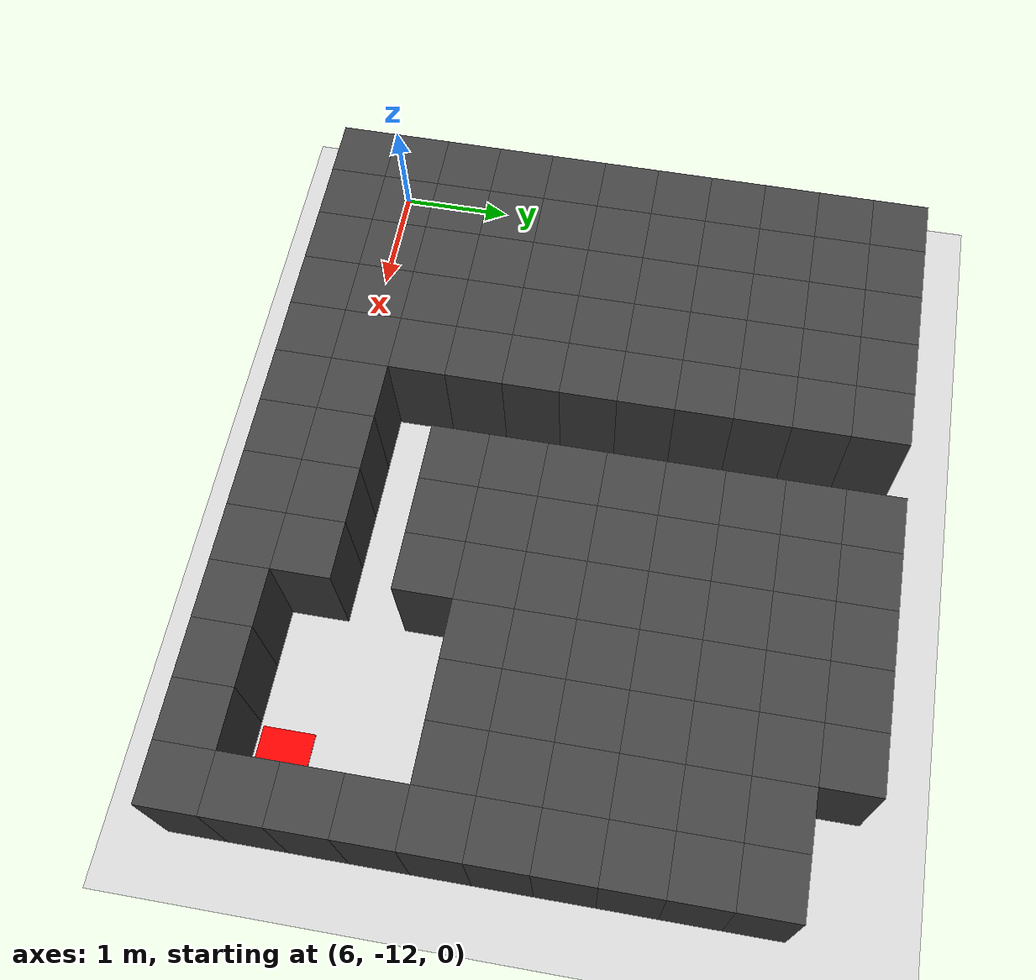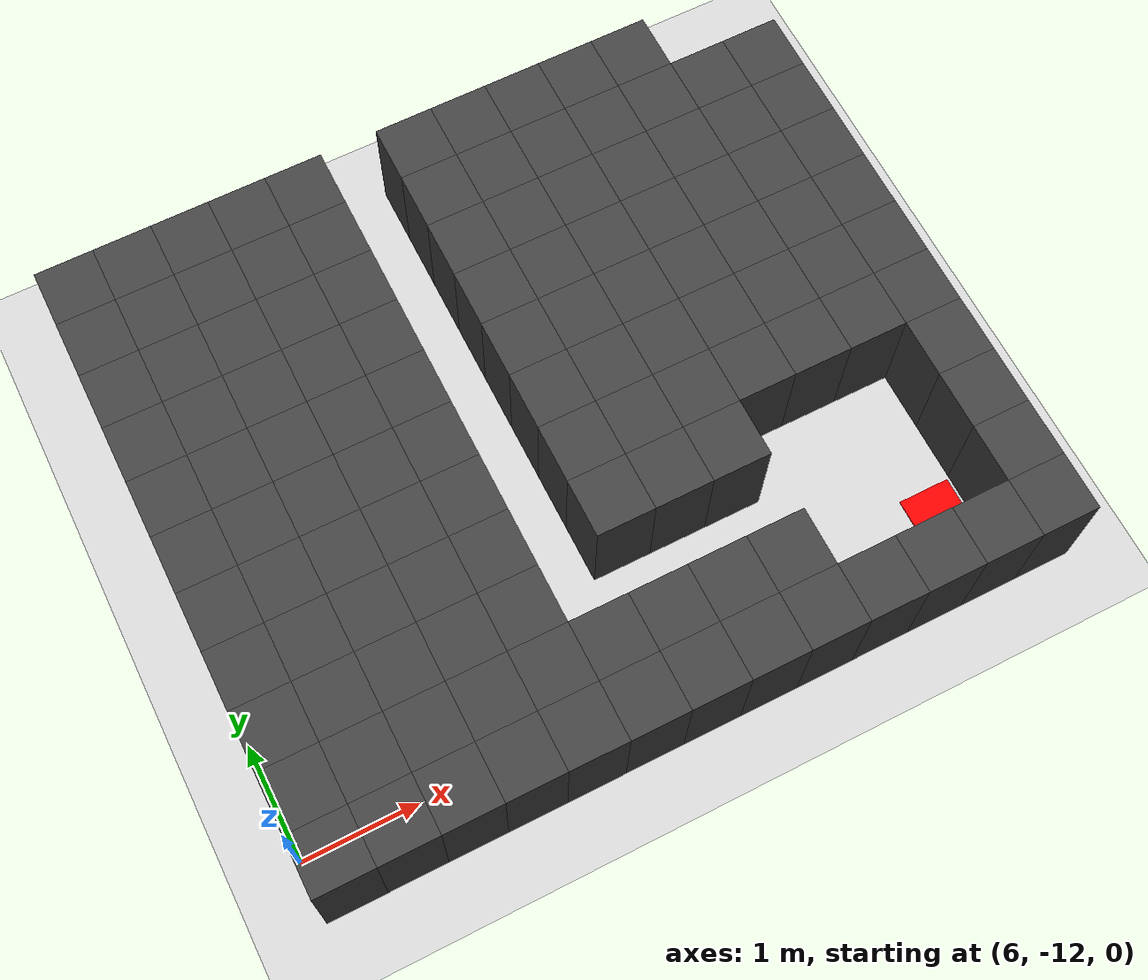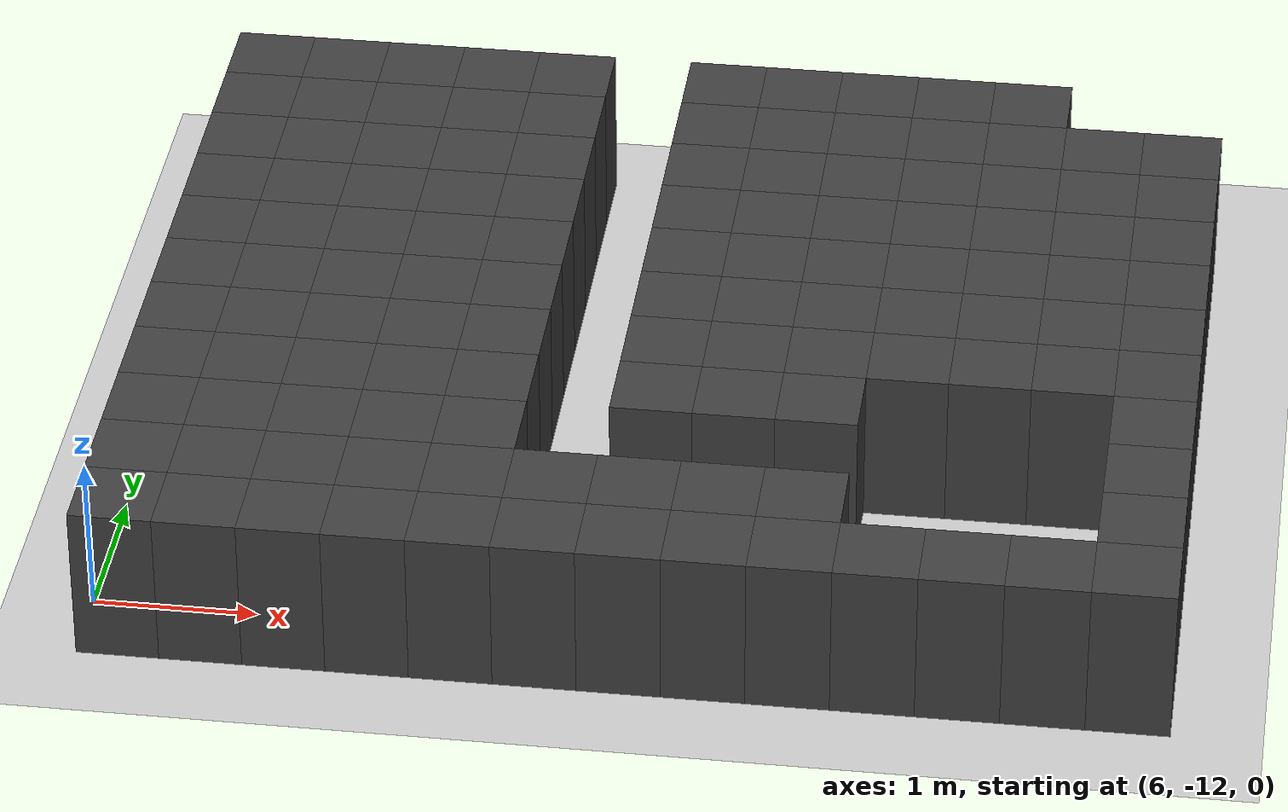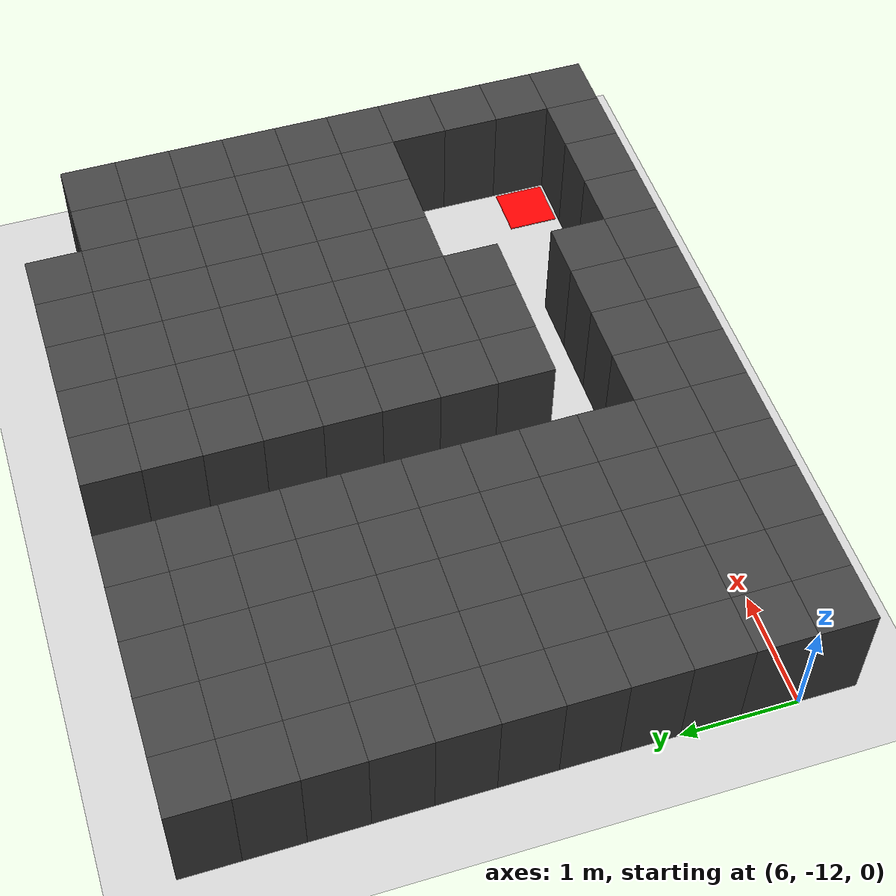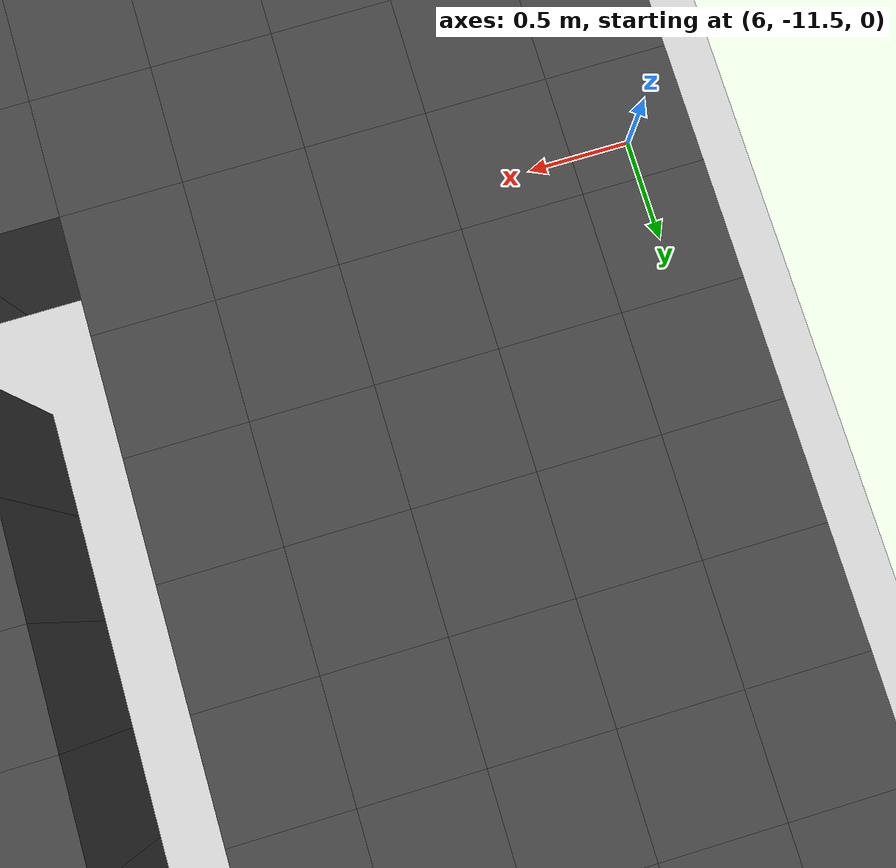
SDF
<sdf version="1.7">
 <world name="map_14547">
  <model name="ground_plane">
   <static>true</static>
   <link name="link">
    <collision name="collision">
     <geometry><plane><normal>0 0 1</normal><size>200 200</size></plane></geometry>
    </collision>
    <visual name="visual">
     <geometry><plane><normal>0 0 1</normal><size>200 200</size></plane></geometry>
     <material><ambient>0.8 0.8 0.8 1</ambient><diffuse>0.8 0.8 0.8 1</diffuse></material>
    </visual>
   </link>
  </model>
  <model name="maze_environment">
   <static>true</static>
   <link name="wall_1393">
    <pose>6.250 -7.250 0.500 0 0 0</pose>
    <collision name="col"><geometry><box><size>0.5 0.5 1.0</size></box></geometry></collision>
    <visual name="vis">
     <geometry><box><size>0.5 0.5 1.0</size></box></geometry>
     <material><ambient>0.15 0.15 0.15 1</ambient><diffuse>0.25 0.25 0.25 1</diffuse></material>
    </visual>
   </link>
   <link name="wall_1394">
    <pose>6.750 -7.250 0.500 0 0 0</pose>
    <collision name="col"><geometry><box><size>0.5 0.5 1.0</size></box></geometry></collision>
    <visual name="vis">
     <geometry><box><size>0.5 0.5 1.0</size></box></geometry>
     <material><ambient>0.15 0.15 0.15 1</ambient><diffuse>0.25 0.25 0.25 1</diffuse></material>
    </visual>
   </link>
   <link name="wall_1395">
    <pose>7.250 -7.250 0.500 0 0 0</pose>
    <collision name="col"><geometry><box><size>0.5 0.5 1.0</size></box></geometry></collision>
    <visual name="vis">
     <geometry><box><size>0.5 0.5 1.0</size></box></geometry>
     <material><ambient>0.15 0.15 0.15 1</ambient><diffuse>0.25 0.25 0.25 1</diffuse></material>
    </visual>
   </link>
   <link name="wall_1396">
    <pose>7.750 -7.250 0.500 0 0 0</pose>
    <collision name="col"><geometry><box><size>0.5 0.5 1.0</size></box></geometry></collision>
    <visual name="vis">
     <geometry><box><size>0.5 0.5 1.0</size></box></geometry>
     <material><ambient>0.15 0.15 0.15 1</ambient><diffuse>0.25 0.25 0.25 1</diffuse></material>
    </visual>
   </link>
   <link name="wall_1397">
    <pose>8.250 -7.250 0.500 0 0 0</pose>
    <collision name="col"><geometry><box><size>0.5 0.5 1.0</size></box></geometry></collision>
    <visual name="vis">
     <geometry><box><size>0.5 0.5 1.0</size></box></geometry>
     <material><ambient>0.15 0.15 0.15 1</ambient><diffuse>0.25 0.25 0.25 1</diffuse></material>
    </visual>
   </link>
   <link name="wall_1398">
    <pose>9.250 -7.250 0.500 0 0 0</pose>
    <collision name="col"><geometry><box><size>0.5 0.5 1.0</size></box></geometry></collision>
    <visual name="vis">
     <geometry><box><size>0.5 0.5 1.0</size></box></geometry>
     <material><ambient>0.15 0.15 0.15 1</ambient><diffuse>0.25 0.25 0.25 1</diffuse></material>
    </visual>
   </link>
   <link name="wall_1399">
    <pose>9.750 -7.250 0.500 0 0 0</pose>
    <collision name="col"><geometry><box><size>0.5 0.5 1.0</size></box></geometry></collision>
    <visual name="vis">
     <geometry><box><size>0.5 0.5 1.0</size></box></geometry>
     <material><ambient>0.15 0.15 0.15 1</ambient><diffuse>0.25 0.25 0.25 1</diffuse></material>
    </visual>
   </link>
   <link name="wall_1400">
    <pose>10.250 -7.250 0.500 0 0 0</pose>
    <collision name="col"><geometry><box><size>0.5 0.5 1.0</size></box></geometry></collision>
    <visual name="vis">
     <geometry><box><size>0.5 0.5 1.0</size></box></geometry>
     <material><ambient>0.15 0.15 0.15 1</ambient><diffuse>0.25 0.25 0.25 1</diffuse></material>
    </visual>
   </link>
   <link name="wall_1401">
    <pose>10.750 -7.250 0.500 0 0 0</pose>
    <collision name="col"><geometry><box><size>0.5 0.5 1.0</size></box></geometry></collision>
    <visual name="vis">
     <geometry><box><size>0.5 0.5 1.0</size></box></geometry>
     <material><ambient>0.15 0.15 0.15 1</ambient><diffuse>0.25 0.25 0.25 1</diffuse></material>
    </visual>
   </link>
   <link name="wall_1402">
    <pose>11.250 -7.250 0.500 0 0 0</pose>
    <collision name="col"><geometry><box><size>0.5 0.5 1.0</size></box></geometry></collision>
    <visual name="vis">
     <geometry><box><size>0.5 0.5 1.0</size></box></geometry>
     <material><ambient>0.15 0.15 0.15 1</ambient><diffuse>0.25 0.25 0.25 1</diffuse></material>
    </visual>
   </link>
   <link name="wall_1424">
    <pose>6.250 -7.750 0.500 0 0 0</pose>
    <collision name="col"><geometry><box><size>0.5 0.5 1.0</size></box></geometry></collision>
    <visual name="vis">
     <geometry><box><size>0.5 0.5 1.0</size></box></geometry>
     <material><ambient>0.15 0.15 0.15 1</ambient><diffuse>0.25 0.25 0.25 1</diffuse></material>
    </visual>
   </link>
   <link name="wall_1425">
    <pose>6.750 -7.750 0.500 0 0 0</pose>
    <collision name="col"><geometry><box><size>0.5 0.5 1.0</size></box></geometry></collision>
    <visual name="vis">
     <geometry><box><size>0.5 0.5 1.0</size></box></geometry>
     <material><ambient>0.15 0.15 0.15 1</ambient><diffuse>0.25 0.25 0.25 1</diffuse></material>
    </visual>
   </link>
   <link name="wall_1426">
    <pose>7.250 -7.750 0.500 0 0 0</pose>
    <collision name="col"><geometry><box><size>0.5 0.5 1.0</size></box></geometry></collision>
    <visual name="vis">
     <geometry><box><size>0.5 0.5 1.0</size></box></geometry>
     <material><ambient>0.15 0.15 0.15 1</ambient><diffuse>0.25 0.25 0.25 1</diffuse></material>
    </visual>
   </link>
   <link name="wall_1427">
    <pose>7.750 -7.750 0.500 0 0 0</pose>
    <collision name="col"><geometry><box><size>0.5 0.5 1.0</size></box></geometry></collision>
    <visual name="vis">
     <geometry><box><size>0.5 0.5 1.0</size></box></geometry>
     <material><ambient>0.15 0.15 0.15 1</ambient><diffuse>0.25 0.25 0.25 1</diffuse></material>
    </visual>
   </link>
   <link name="wall_1428">
    <pose>8.250 -7.750 0.500 0 0 0</pose>
    <collision name="col"><geometry><box><size>0.5 0.5 1.0</size></box></geometry></collision>
    <visual name="vis">
     <geometry><box><size>0.5 0.5 1.0</size></box></geometry>
     <material><ambient>0.15 0.15 0.15 1</ambient><diffuse>0.25 0.25 0.25 1</diffuse></material>
    </visual>
   </link>
   <link name="wall_1429">
    <pose>9.250 -7.750 0.500 0 0 0</pose>
    <collision name="col"><geometry><box><size>0.5 0.5 1.0</size></box></geometry></collision>
    <visual name="vis">
     <geometry><box><size>0.5 0.5 1.0</size></box></geometry>
     <material><ambient>0.15 0.15 0.15 1</ambient><diffuse>0.25 0.25 0.25 1</diffuse></material>
    </visual>
   </link>
   <link name="wall_1430">
    <pose>9.750 -7.750 0.500 0 0 0</pose>
    <collision name="col"><geometry><box><size>0.5 0.5 1.0</size></box></geometry></collision>
    <visual name="vis">
     <geometry><box><size>0.5 0.5 1.0</size></box></geometry>
     <material><ambient>0.15 0.15 0.15 1</ambient><diffuse>0.25 0.25 0.25 1</diffuse></material>
    </visual>
   </link>
   <link name="wall_1431">
    <pose>10.250 -7.750 0.500 0 0 0</pose>
    <collision name="col"><geometry><box><size>0.5 0.5 1.0</size></box></geometry></collision>
    <visual name="vis">
     <geometry><box><size>0.5 0.5 1.0</size></box></geometry>
     <material><ambient>0.15 0.15 0.15 1</ambient><diffuse>0.25 0.25 0.25 1</diffuse></material>
    </visual>
   </link>
   <link name="wall_1432">
    <pose>10.750 -7.750 0.500 0 0 0</pose>
    <collision name="col"><geometry><box><size>0.5 0.5 1.0</size></box></geometry></collision>
    <visual name="vis">
     <geometry><box><size>0.5 0.5 1.0</size></box></geometry>
     <material><ambient>0.15 0.15 0.15 1</ambient><diffuse>0.25 0.25 0.25 1</diffuse></material>
    </visual>
   </link>
   <link name="wall_1433">
    <pose>11.250 -7.750 0.500 0 0 0</pose>
    <collision name="col"><geometry><box><size>0.5 0.5 1.0</size></box></geometry></collision>
    <visual name="vis">
     <geometry><box><size>0.5 0.5 1.0</size></box></geometry>
     <material><ambient>0.15 0.15 0.15 1</ambient><diffuse>0.25 0.25 0.25 1</diffuse></material>
    </visual>
   </link>
   <link name="wall_1434">
    <pose>11.750 -7.750 0.500 0 0 0</pose>
    <collision name="col"><geometry><box><size>0.5 0.5 1.0</size></box></geometry></collision>
    <visual name="vis">
     <geometry><box><size>0.5 0.5 1.0</size></box></geometry>
     <material><ambient>0.15 0.15 0.15 1</ambient><diffuse>0.25 0.25 0.25 1</diffuse></material>
    </visual>
   </link>
   <link name="wall_1435">
    <pose>12.250 -7.750 0.500 0 0 0</pose>
    <collision name="col"><geometry><box><size>0.5 0.5 1.0</size></box></geometry></collision>
    <visual name="vis">
     <geometry><box><size>0.5 0.5 1.0</size></box></geometry>
     <material><ambient>0.15 0.15 0.15 1</ambient><diffuse>0.25 0.25 0.25 1</diffuse></material>
    </visual>
   </link>
   <link name="wall_1460">
    <pose>6.250 -8.250 0.500 0 0 0</pose>
    <collision name="col"><geometry><box><size>0.5 0.5 1.0</size></box></geometry></collision>
    <visual name="vis">
     <geometry><box><size>0.5 0.5 1.0</size></box></geometry>
     <material><ambient>0.15 0.15 0.15 1</ambient><diffuse>0.25 0.25 0.25 1</diffuse></material>
    </visual>
   </link>
   <link name="wall_1461">
    <pose>6.750 -8.250 0.500 0 0 0</pose>
    <collision name="col"><geometry><box><size>0.5 0.5 1.0</size></box></geometry></collision>
    <visual name="vis">
     <geometry><box><size>0.5 0.5 1.0</size></box></geometry>
     <material><ambient>0.15 0.15 0.15 1</ambient><diffuse>0.25 0.25 0.25 1</diffuse></material>
    </visual>
   </link>
   <link name="wall_1462">
    <pose>7.250 -8.250 0.500 0 0 0</pose>
    <collision name="col"><geometry><box><size>0.5 0.5 1.0</size></box></geometry></collision>
    <visual name="vis">
     <geometry><box><size>0.5 0.5 1.0</size></box></geometry>
     <material><ambient>0.15 0.15 0.15 1</ambient><diffuse>0.25 0.25 0.25 1</diffuse></material>
    </visual>
   </link>
   <link name="wall_1463">
    <pose>7.750 -8.250 0.500 0 0 0</pose>
    <collision name="col"><geometry><box><size>0.5 0.5 1.0</size></box></geometry></collision>
    <visual name="vis">
     <geometry><box><size>0.5 0.5 1.0</size></box></geometry>
     <material><ambient>0.15 0.15 0.15 1</ambient><diffuse>0.25 0.25 0.25 1</diffuse></material>
    </visual>
   </link>
   <link name="wall_1464">
    <pose>8.250 -8.250 0.500 0 0 0</pose>
    <collision name="col"><geometry><box><size>0.5 0.5 1.0</size></box></geometry></collision>
    <visual name="vis">
     <geometry><box><size>0.5 0.5 1.0</size></box></geometry>
     <material><ambient>0.15 0.15 0.15 1</ambient><diffuse>0.25 0.25 0.25 1</diffuse></material>
    </visual>
   </link>
   <link name="wall_1465">
    <pose>9.250 -8.250 0.500 0 0 0</pose>
    <collision name="col"><geometry><box><size>0.5 0.5 1.0</size></box></geometry></collision>
    <visual name="vis">
     <geometry><box><size>0.5 0.5 1.0</size></box></geometry>
     <material><ambient>0.15 0.15 0.15 1</ambient><diffuse>0.25 0.25 0.25 1</diffuse></material>
    </visual>
   </link>
   <link name="wall_1466">
    <pose>9.750 -8.250 0.500 0 0 0</pose>
    <collision name="col"><geometry><box><size>0.5 0.5 1.0</size></box></geometry></collision>
    <visual name="vis">
     <geometry><box><size>0.5 0.5 1.0</size></box></geometry>
     <material><ambient>0.15 0.15 0.15 1</ambient><diffuse>0.25 0.25 0.25 1</diffuse></material>
    </visual>
   </link>
   <link name="wall_1467">
    <pose>10.250 -8.250 0.500 0 0 0</pose>
    <collision name="col"><geometry><box><size>0.5 0.5 1.0</size></box></geometry></collision>
    <visual name="vis">
     <geometry><box><size>0.5 0.5 1.0</size></box></geometry>
     <material><ambient>0.15 0.15 0.15 1</ambient><diffuse>0.25 0.25 0.25 1</diffuse></material>
    </visual>
   </link>
   <link name="wall_1468">
    <pose>10.750 -8.250 0.500 0 0 0</pose>
    <collision name="col"><geometry><box><size>0.5 0.5 1.0</size></box></geometry></collision>
    <visual name="vis">
     <geometry><box><size>0.5 0.5 1.0</size></box></geometry>
     <material><ambient>0.15 0.15 0.15 1</ambient><diffuse>0.25 0.25 0.25 1</diffuse></material>
    </visual>
   </link>
   <link name="wall_1469">
    <pose>11.250 -8.250 0.500 0 0 0</pose>
    <collision name="col"><geometry><box><size>0.5 0.5 1.0</size></box></geometry></collision>
    <visual name="vis">
     <geometry><box><size>0.5 0.5 1.0</size></box></geometry>
     <material><ambient>0.15 0.15 0.15 1</ambient><diffuse>0.25 0.25 0.25 1</diffuse></material>
    </visual>
   </link>
   <link name="wall_1470">
    <pose>11.750 -8.250 0.500 0 0 0</pose>
    <collision name="col"><geometry><box><size>0.5 0.5 1.0</size></box></geometry></collision>
    <visual name="vis">
     <geometry><box><size>0.5 0.5 1.0</size></box></geometry>
     <material><ambient>0.15 0.15 0.15 1</ambient><diffuse>0.25 0.25 0.25 1</diffuse></material>
    </visual>
   </link>
   <link name="wall_1471">
    <pose>12.250 -8.250 0.500 0 0 0</pose>
    <collision name="col"><geometry><box><size>0.5 0.5 1.0</size></box></geometry></collision>
    <visual name="vis">
     <geometry><box><size>0.5 0.5 1.0</size></box></geometry>
     <material><ambient>0.15 0.15 0.15 1</ambient><diffuse>0.25 0.25 0.25 1</diffuse></material>
    </visual>
   </link>
   <link name="wall_1497">
    <pose>6.250 -8.750 0.500 0 0 0</pose>
    <collision name="col"><geometry><box><size>0.5 0.5 1.0</size></box></geometry></collision>
    <visual name="vis">
     <geometry><box><size>0.5 0.5 1.0</size></box></geometry>
     <material><ambient>0.15 0.15 0.15 1</ambient><diffuse>0.25 0.25 0.25 1</diffuse></material>
    </visual>
   </link>
   <link name="wall_1498">
    <pose>6.750 -8.750 0.500 0 0 0</pose>
    <collision name="col"><geometry><box><size>0.5 0.5 1.0</size></box></geometry></collision>
    <visual name="vis">
     <geometry><box><size>0.5 0.5 1.0</size></box></geometry>
     <material><ambient>0.15 0.15 0.15 1</ambient><diffuse>0.25 0.25 0.25 1</diffuse></material>
    </visual>
   </link>
   <link name="wall_1499">
    <pose>7.250 -8.750 0.500 0 0 0</pose>
    <collision name="col"><geometry><box><size>0.5 0.5 1.0</size></box></geometry></collision>
    <visual name="vis">
     <geometry><box><size>0.5 0.5 1.0</size></box></geometry>
     <material><ambient>0.15 0.15 0.15 1</ambient><diffuse>0.25 0.25 0.25 1</diffuse></material>
    </visual>
   </link>
   <link name="wall_1500">
    <pose>7.750 -8.750 0.500 0 0 0</pose>
    <collision name="col"><geometry><box><size>0.5 0.5 1.0</size></box></geometry></collision>
    <visual name="vis">
     <geometry><box><size>0.5 0.5 1.0</size></box></geometry>
     <material><ambient>0.15 0.15 0.15 1</ambient><diffuse>0.25 0.25 0.25 1</diffuse></material>
    </visual>
   </link>
   <link name="wall_1501">
    <pose>8.250 -8.750 0.500 0 0 0</pose>
    <collision name="col"><geometry><box><size>0.5 0.5 1.0</size></box></geometry></collision>
    <visual name="vis">
     <geometry><box><size>0.5 0.5 1.0</size></box></geometry>
     <material><ambient>0.15 0.15 0.15 1</ambient><diffuse>0.25 0.25 0.25 1</diffuse></material>
    </visual>
   </link>
   <link name="wall_1502">
    <pose>9.250 -8.750 0.500 0 0 0</pose>
    <collision name="col"><geometry><box><size>0.5 0.5 1.0</size></box></geometry></collision>
    <visual name="vis">
     <geometry><box><size>0.5 0.5 1.0</size></box></geometry>
     <material><ambient>0.15 0.15 0.15 1</ambient><diffuse>0.25 0.25 0.25 1</diffuse></material>
    </visual>
   </link>
   <link name="wall_1503">
    <pose>9.750 -8.750 0.500 0 0 0</pose>
    <collision name="col"><geometry><box><size>0.5 0.5 1.0</size></box></geometry></collision>
    <visual name="vis">
     <geometry><box><size>0.5 0.5 1.0</size></box></geometry>
     <material><ambient>0.15 0.15 0.15 1</ambient><diffuse>0.25 0.25 0.25 1</diffuse></material>
    </visual>
   </link>
   <link name="wall_1504">
    <pose>10.250 -8.750 0.500 0 0 0</pose>
    <collision name="col"><geometry><box><size>0.5 0.5 1.0</size></box></geometry></collision>
    <visual name="vis">
     <geometry><box><size>0.5 0.5 1.0</size></box></geometry>
     <material><ambient>0.15 0.15 0.15 1</ambient><diffuse>0.25 0.25 0.25 1</diffuse></material>
    </visual>
   </link>
   <link name="wall_1505">
    <pose>10.750 -8.750 0.500 0 0 0</pose>
    <collision name="col"><geometry><box><size>0.5 0.5 1.0</size></box></geometry></collision>
    <visual name="vis">
     <geometry><box><size>0.5 0.5 1.0</size></box></geometry>
     <material><ambient>0.15 0.15 0.15 1</ambient><diffuse>0.25 0.25 0.25 1</diffuse></material>
    </visual>
   </link>
   <link name="wall_1506">
    <pose>11.250 -8.750 0.500 0 0 0</pose>
    <collision name="col"><geometry><box><size>0.5 0.5 1.0</size></box></geometry></collision>
    <visual name="vis">
     <geometry><box><size>0.5 0.5 1.0</size></box></geometry>
     <material><ambient>0.15 0.15 0.15 1</ambient><diffuse>0.25 0.25 0.25 1</diffuse></material>
    </visual>
   </link>
   <link name="wall_1507">
    <pose>11.750 -8.750 0.500 0 0 0</pose>
    <collision name="col"><geometry><box><size>0.5 0.5 1.0</size></box></geometry></collision>
    <visual name="vis">
     <geometry><box><size>0.5 0.5 1.0</size></box></geometry>
     <material><ambient>0.15 0.15 0.15 1</ambient><diffuse>0.25 0.25 0.25 1</diffuse></material>
    </visual>
   </link>
   <link name="wall_1508">
    <pose>12.250 -8.750 0.500 0 0 0</pose>
    <collision name="col"><geometry><box><size>0.5 0.5 1.0</size></box></geometry></collision>
    <visual name="vis">
     <geometry><box><size>0.5 0.5 1.0</size></box></geometry>
     <material><ambient>0.15 0.15 0.15 1</ambient><diffuse>0.25 0.25 0.25 1</diffuse></material>
    </visual>
   </link>
   <link name="wall_1540">
    <pose>6.250 -9.250 0.500 0 0 0</pose>
    <collision name="col"><geometry><box><size>0.5 0.5 1.0</size></box></geometry></collision>
    <visual name="vis">
     <geometry><box><size>0.5 0.5 1.0</size></box></geometry>
     <material><ambient>0.15 0.15 0.15 1</ambient><diffuse>0.25 0.25 0.25 1</diffuse></material>
    </visual>
   </link>
   <link name="wall_1541">
    <pose>6.750 -9.250 0.500 0 0 0</pose>
    <collision name="col"><geometry><box><size>0.5 0.5 1.0</size></box></geometry></collision>
    <visual name="vis">
     <geometry><box><size>0.5 0.5 1.0</size></box></geometry>
     <material><ambient>0.15 0.15 0.15 1</ambient><diffuse>0.25 0.25 0.25 1</diffuse></material>
    </visual>
   </link>
   <link name="wall_1542">
    <pose>7.250 -9.250 0.500 0 0 0</pose>
    <collision name="col"><geometry><box><size>0.5 0.5 1.0</size></box></geometry></collision>
    <visual name="vis">
     <geometry><box><size>0.5 0.5 1.0</size></box></geometry>
     <material><ambient>0.15 0.15 0.15 1</ambient><diffuse>0.25 0.25 0.25 1</diffuse></material>
    </visual>
   </link>
   <link name="wall_1543">
    <pose>7.750 -9.250 0.500 0 0 0</pose>
    <collision name="col"><geometry><box><size>0.5 0.5 1.0</size></box></geometry></collision>
    <visual name="vis">
     <geometry><box><size>0.5 0.5 1.0</size></box></geometry>
     <material><ambient>0.15 0.15 0.15 1</ambient><diffuse>0.25 0.25 0.25 1</diffuse></material>
    </visual>
   </link>
   <link name="wall_1544">
    <pose>8.250 -9.250 0.500 0 0 0</pose>
    <collision name="col"><geometry><box><size>0.5 0.5 1.0</size></box></geometry></collision>
    <visual name="vis">
     <geometry><box><size>0.5 0.5 1.0</size></box></geometry>
     <material><ambient>0.15 0.15 0.15 1</ambient><diffuse>0.25 0.25 0.25 1</diffuse></material>
    </visual>
   </link>
   <link name="wall_1545">
    <pose>9.250 -9.250 0.500 0 0 0</pose>
    <collision name="col"><geometry><box><size>0.5 0.5 1.0</size></box></geometry></collision>
    <visual name="vis">
     <geometry><box><size>0.5 0.5 1.0</size></box></geometry>
     <material><ambient>0.15 0.15 0.15 1</ambient><diffuse>0.25 0.25 0.25 1</diffuse></material>
    </visual>
   </link>
   <link name="wall_1546">
    <pose>9.750 -9.250 0.500 0 0 0</pose>
    <collision name="col"><geometry><box><size>0.5 0.5 1.0</size></box></geometry></collision>
    <visual name="vis">
     <geometry><box><size>0.5 0.5 1.0</size></box></geometry>
     <material><ambient>0.15 0.15 0.15 1</ambient><diffuse>0.25 0.25 0.25 1</diffuse></material>
    </visual>
   </link>
   <link name="wall_1547">
    <pose>10.250 -9.250 0.500 0 0 0</pose>
    <collision name="col"><geometry><box><size>0.5 0.5 1.0</size></box></geometry></collision>
    <visual name="vis">
     <geometry><box><size>0.5 0.5 1.0</size></box></geometry>
     <material><ambient>0.15 0.15 0.15 1</ambient><diffuse>0.25 0.25 0.25 1</diffuse></material>
    </visual>
   </link>
   <link name="wall_1548">
    <pose>10.750 -9.250 0.500 0 0 0</pose>
    <collision name="col"><geometry><box><size>0.5 0.5 1.0</size></box></geometry></collision>
    <visual name="vis">
     <geometry><box><size>0.5 0.5 1.0</size></box></geometry>
     <material><ambient>0.15 0.15 0.15 1</ambient><diffuse>0.25 0.25 0.25 1</diffuse></material>
    </visual>
   </link>
   <link name="wall_1549">
    <pose>11.250 -9.250 0.500 0 0 0</pose>
    <collision name="col"><geometry><box><size>0.5 0.5 1.0</size></box></geometry></collision>
    <visual name="vis">
     <geometry><box><size>0.5 0.5 1.0</size></box></geometry>
     <material><ambient>0.15 0.15 0.15 1</ambient><diffuse>0.25 0.25 0.25 1</diffuse></material>
    </visual>
   </link>
   <link name="wall_1550">
    <pose>11.750 -9.250 0.500 0 0 0</pose>
    <collision name="col"><geometry><box><size>0.5 0.5 1.0</size></box></geometry></collision>
    <visual name="vis">
     <geometry><box><size>0.5 0.5 1.0</size></box></geometry>
     <material><ambient>0.15 0.15 0.15 1</ambient><diffuse>0.25 0.25 0.25 1</diffuse></material>
    </visual>
   </link>
   <link name="wall_1551">
    <pose>12.250 -9.250 0.500 0 0 0</pose>
    <collision name="col"><geometry><box><size>0.5 0.5 1.0</size></box></geometry></collision>
    <visual name="vis">
     <geometry><box><size>0.5 0.5 1.0</size></box></geometry>
     <material><ambient>0.15 0.15 0.15 1</ambient><diffuse>0.25 0.25 0.25 1</diffuse></material>
    </visual>
   </link>
   <link name="wall_1583">
    <pose>6.250 -9.750 0.500 0 0 0</pose>
    <collision name="col"><geometry><box><size>0.5 0.5 1.0</size></box></geometry></collision>
    <visual name="vis">
     <geometry><box><size>0.5 0.5 1.0</size></box></geometry>
     <material><ambient>0.15 0.15 0.15 1</ambient><diffuse>0.25 0.25 0.25 1</diffuse></material>
    </visual>
   </link>
   <link name="wall_1584">
    <pose>6.750 -9.750 0.500 0 0 0</pose>
    <collision name="col"><geometry><box><size>0.5 0.5 1.0</size></box></geometry></collision>
    <visual name="vis">
     <geometry><box><size>0.5 0.5 1.0</size></box></geometry>
     <material><ambient>0.15 0.15 0.15 1</ambient><diffuse>0.25 0.25 0.25 1</diffuse></material>
    </visual>
   </link>
   <link name="wall_1585">
    <pose>7.250 -9.750 0.500 0 0 0</pose>
    <collision name="col"><geometry><box><size>0.5 0.5 1.0</size></box></geometry></collision>
    <visual name="vis">
     <geometry><box><size>0.5 0.5 1.0</size></box></geometry>
     <material><ambient>0.15 0.15 0.15 1</ambient><diffuse>0.25 0.25 0.25 1</diffuse></material>
    </visual>
   </link>
   <link name="wall_1586">
    <pose>7.750 -9.750 0.500 0 0 0</pose>
    <collision name="col"><geometry><box><size>0.5 0.5 1.0</size></box></geometry></collision>
    <visual name="vis">
     <geometry><box><size>0.5 0.5 1.0</size></box></geometry>
     <material><ambient>0.15 0.15 0.15 1</ambient><diffuse>0.25 0.25 0.25 1</diffuse></material>
    </visual>
   </link>
   <link name="wall_1587">
    <pose>8.250 -9.750 0.500 0 0 0</pose>
    <collision name="col"><geometry><box><size>0.5 0.5 1.0</size></box></geometry></collision>
    <visual name="vis">
     <geometry><box><size>0.5 0.5 1.0</size></box></geometry>
     <material><ambient>0.15 0.15 0.15 1</ambient><diffuse>0.25 0.25 0.25 1</diffuse></material>
    </visual>
   </link>
   <link name="wall_1588">
    <pose>9.250 -9.750 0.500 0 0 0</pose>
    <collision name="col"><geometry><box><size>0.5 0.5 1.0</size></box></geometry></collision>
    <visual name="vis">
     <geometry><box><size>0.5 0.5 1.0</size></box></geometry>
     <material><ambient>0.15 0.15 0.15 1</ambient><diffuse>0.25 0.25 0.25 1</diffuse></material>
    </visual>
   </link>
   <link name="wall_1589">
    <pose>9.750 -9.750 0.500 0 0 0</pose>
    <collision name="col"><geometry><box><size>0.5 0.5 1.0</size></box></geometry></collision>
    <visual name="vis">
     <geometry><box><size>0.5 0.5 1.0</size></box></geometry>
     <material><ambient>0.15 0.15 0.15 1</ambient><diffuse>0.25 0.25 0.25 1</diffuse></material>
    </visual>
   </link>
   <link name="wall_1590">
    <pose>10.250 -9.750 0.500 0 0 0</pose>
    <collision name="col"><geometry><box><size>0.5 0.5 1.0</size></box></geometry></collision>
    <visual name="vis">
     <geometry><box><size>0.5 0.5 1.0</size></box></geometry>
     <material><ambient>0.15 0.15 0.15 1</ambient><diffuse>0.25 0.25 0.25 1</diffuse></material>
    </visual>
   </link>
   <link name="wall_1591">
    <pose>10.750 -9.750 0.500 0 0 0</pose>
    <collision name="col"><geometry><box><size>0.5 0.5 1.0</size></box></geometry></collision>
    <visual name="vis">
     <geometry><box><size>0.5 0.5 1.0</size></box></geometry>
     <material><ambient>0.15 0.15 0.15 1</ambient><diffuse>0.25 0.25 0.25 1</diffuse></material>
    </visual>
   </link>
   <link name="wall_1592">
    <pose>11.250 -9.750 0.500 0 0 0</pose>
    <collision name="col"><geometry><box><size>0.5 0.5 1.0</size></box></geometry></collision>
    <visual name="vis">
     <geometry><box><size>0.5 0.5 1.0</size></box></geometry>
     <material><ambient>0.15 0.15 0.15 1</ambient><diffuse>0.25 0.25 0.25 1</diffuse></material>
    </visual>
   </link>
   <link name="wall_1593">
    <pose>11.750 -9.750 0.500 0 0 0</pose>
    <collision name="col"><geometry><box><size>0.5 0.5 1.0</size></box></geometry></collision>
    <visual name="vis">
     <geometry><box><size>0.5 0.5 1.0</size></box></geometry>
     <material><ambient>0.15 0.15 0.15 1</ambient><diffuse>0.25 0.25 0.25 1</diffuse></material>
    </visual>
   </link>
   <link name="wall_1594">
    <pose>12.250 -9.750 0.500 0 0 0</pose>
    <collision name="col"><geometry><box><size>0.5 0.5 1.0</size></box></geometry></collision>
    <visual name="vis">
     <geometry><box><size>0.5 0.5 1.0</size></box></geometry>
     <material><ambient>0.15 0.15 0.15 1</ambient><diffuse>0.25 0.25 0.25 1</diffuse></material>
    </visual>
   </link>
   <link name="wall_1626">
    <pose>6.250 -10.250 0.500 0 0 0</pose>
    <collision name="col"><geometry><box><size>0.5 0.5 1.0</size></box></geometry></collision>
    <visual name="vis">
     <geometry><box><size>0.5 0.5 1.0</size></box></geometry>
     <material><ambient>0.15 0.15 0.15 1</ambient><diffuse>0.25 0.25 0.25 1</diffuse></material>
    </visual>
   </link>
   <link name="wall_1627">
    <pose>6.750 -10.250 0.500 0 0 0</pose>
    <collision name="col"><geometry><box><size>0.5 0.5 1.0</size></box></geometry></collision>
    <visual name="vis">
     <geometry><box><size>0.5 0.5 1.0</size></box></geometry>
     <material><ambient>0.15 0.15 0.15 1</ambient><diffuse>0.25 0.25 0.25 1</diffuse></material>
    </visual>
   </link>
   <link name="wall_1628">
    <pose>7.250 -10.250 0.500 0 0 0</pose>
    <collision name="col"><geometry><box><size>0.5 0.5 1.0</size></box></geometry></collision>
    <visual name="vis">
     <geometry><box><size>0.5 0.5 1.0</size></box></geometry>
     <material><ambient>0.15 0.15 0.15 1</ambient><diffuse>0.25 0.25 0.25 1</diffuse></material>
    </visual>
   </link>
   <link name="wall_1629">
    <pose>7.750 -10.250 0.500 0 0 0</pose>
    <collision name="col"><geometry><box><size>0.5 0.5 1.0</size></box></geometry></collision>
    <visual name="vis">
     <geometry><box><size>0.5 0.5 1.0</size></box></geometry>
     <material><ambient>0.15 0.15 0.15 1</ambient><diffuse>0.25 0.25 0.25 1</diffuse></material>
    </visual>
   </link>
   <link name="wall_1630">
    <pose>8.250 -10.250 0.500 0 0 0</pose>
    <collision name="col"><geometry><box><size>0.5 0.5 1.0</size></box></geometry></collision>
    <visual name="vis">
     <geometry><box><size>0.5 0.5 1.0</size></box></geometry>
     <material><ambient>0.15 0.15 0.15 1</ambient><diffuse>0.25 0.25 0.25 1</diffuse></material>
    </visual>
   </link>
   <link name="wall_1631">
    <pose>9.250 -10.250 0.500 0 0 0</pose>
    <collision name="col"><geometry><box><size>0.5 0.5 1.0</size></box></geometry></collision>
    <visual name="vis">
     <geometry><box><size>0.5 0.5 1.0</size></box></geometry>
     <material><ambient>0.15 0.15 0.15 1</ambient><diffuse>0.25 0.25 0.25 1</diffuse></material>
    </visual>
   </link>
   <link name="wall_1632">
    <pose>9.750 -10.250 0.500 0 0 0</pose>
    <collision name="col"><geometry><box><size>0.5 0.5 1.0</size></box></geometry></collision>
    <visual name="vis">
     <geometry><box><size>0.5 0.5 1.0</size></box></geometry>
     <material><ambient>0.15 0.15 0.15 1</ambient><diffuse>0.25 0.25 0.25 1</diffuse></material>
    </visual>
   </link>
   <link name="wall_1633">
    <pose>10.250 -10.250 0.500 0 0 0</pose>
    <collision name="col"><geometry><box><size>0.5 0.5 1.0</size></box></geometry></collision>
    <visual name="vis">
     <geometry><box><size>0.5 0.5 1.0</size></box></geometry>
     <material><ambient>0.15 0.15 0.15 1</ambient><diffuse>0.25 0.25 0.25 1</diffuse></material>
    </visual>
   </link>
   <link name="wall_1634">
    <pose>10.750 -10.250 0.500 0 0 0</pose>
    <collision name="col"><geometry><box><size>0.5 0.5 1.0</size></box></geometry></collision>
    <visual name="vis">
     <geometry><box><size>0.5 0.5 1.0</size></box></geometry>
     <material><ambient>0.15 0.15 0.15 1</ambient><diffuse>0.25 0.25 0.25 1</diffuse></material>
    </visual>
   </link>
   <link name="wall_1635">
    <pose>11.250 -10.250 0.500 0 0 0</pose>
    <collision name="col"><geometry><box><size>0.5 0.5 1.0</size></box></geometry></collision>
    <visual name="vis">
     <geometry><box><size>0.5 0.5 1.0</size></box></geometry>
     <material><ambient>0.15 0.15 0.15 1</ambient><diffuse>0.25 0.25 0.25 1</diffuse></material>
    </visual>
   </link>
   <link name="wall_1636">
    <pose>11.750 -10.250 0.500 0 0 0</pose>
    <collision name="col"><geometry><box><size>0.5 0.5 1.0</size></box></geometry></collision>
    <visual name="vis">
     <geometry><box><size>0.5 0.5 1.0</size></box></geometry>
     <material><ambient>0.15 0.15 0.15 1</ambient><diffuse>0.25 0.25 0.25 1</diffuse></material>
    </visual>
   </link>
   <link name="wall_1637">
    <pose>12.250 -10.250 0.500 0 0 0</pose>
    <collision name="col"><geometry><box><size>0.5 0.5 1.0</size></box></geometry></collision>
    <visual name="vis">
     <geometry><box><size>0.5 0.5 1.0</size></box></geometry>
     <material><ambient>0.15 0.15 0.15 1</ambient><diffuse>0.25 0.25 0.25 1</diffuse></material>
    </visual>
   </link>
   <link name="wall_1675">
    <pose>6.250 -10.750 0.500 0 0 0</pose>
    <collision name="col"><geometry><box><size>0.5 0.5 1.0</size></box></geometry></collision>
    <visual name="vis">
     <geometry><box><size>0.5 0.5 1.0</size></box></geometry>
     <material><ambient>0.15 0.15 0.15 1</ambient><diffuse>0.25 0.25 0.25 1</diffuse></material>
    </visual>
   </link>
   <link name="wall_1676">
    <pose>6.750 -10.750 0.500 0 0 0</pose>
    <collision name="col"><geometry><box><size>0.5 0.5 1.0</size></box></geometry></collision>
    <visual name="vis">
     <geometry><box><size>0.5 0.5 1.0</size></box></geometry>
     <material><ambient>0.15 0.15 0.15 1</ambient><diffuse>0.25 0.25 0.25 1</diffuse></material>
    </visual>
   </link>
   <link name="wall_1677">
    <pose>7.250 -10.750 0.500 0 0 0</pose>
    <collision name="col"><geometry><box><size>0.5 0.5 1.0</size></box></geometry></collision>
    <visual name="vis">
     <geometry><box><size>0.5 0.5 1.0</size></box></geometry>
     <material><ambient>0.15 0.15 0.15 1</ambient><diffuse>0.25 0.25 0.25 1</diffuse></material>
    </visual>
   </link>
   <link name="wall_1678">
    <pose>7.750 -10.750 0.500 0 0 0</pose>
    <collision name="col"><geometry><box><size>0.5 0.5 1.0</size></box></geometry></collision>
    <visual name="vis">
     <geometry><box><size>0.5 0.5 1.0</size></box></geometry>
     <material><ambient>0.15 0.15 0.15 1</ambient><diffuse>0.25 0.25 0.25 1</diffuse></material>
    </visual>
   </link>
   <link name="wall_1679">
    <pose>8.250 -10.750 0.500 0 0 0</pose>
    <collision name="col"><geometry><box><size>0.5 0.5 1.0</size></box></geometry></collision>
    <visual name="vis">
     <geometry><box><size>0.5 0.5 1.0</size></box></geometry>
     <material><ambient>0.15 0.15 0.15 1</ambient><diffuse>0.25 0.25 0.25 1</diffuse></material>
    </visual>
   </link>
   <link name="wall_1680">
    <pose>9.250 -10.750 0.500 0 0 0</pose>
    <collision name="col"><geometry><box><size>0.5 0.5 1.0</size></box></geometry></collision>
    <visual name="vis">
     <geometry><box><size>0.5 0.5 1.0</size></box></geometry>
     <material><ambient>0.15 0.15 0.15 1</ambient><diffuse>0.25 0.25 0.25 1</diffuse></material>
    </visual>
   </link>
   <link name="wall_1681">
    <pose>9.750 -10.750 0.500 0 0 0</pose>
    <collision name="col"><geometry><box><size>0.5 0.5 1.0</size></box></geometry></collision>
    <visual name="vis">
     <geometry><box><size>0.5 0.5 1.0</size></box></geometry>
     <material><ambient>0.15 0.15 0.15 1</ambient><diffuse>0.25 0.25 0.25 1</diffuse></material>
    </visual>
   </link>
   <link name="wall_1682">
    <pose>10.250 -10.750 0.500 0 0 0</pose>
    <collision name="col"><geometry><box><size>0.5 0.5 1.0</size></box></geometry></collision>
    <visual name="vis">
     <geometry><box><size>0.5 0.5 1.0</size></box></geometry>
     <material><ambient>0.15 0.15 0.15 1</ambient><diffuse>0.25 0.25 0.25 1</diffuse></material>
    </visual>
   </link>
   <link name="wall_1683">
    <pose>12.250 -10.750 0.500 0 0 0</pose>
    <collision name="col"><geometry><box><size>0.5 0.5 1.0</size></box></geometry></collision>
    <visual name="vis">
     <geometry><box><size>0.5 0.5 1.0</size></box></geometry>
     <material><ambient>0.15 0.15 0.15 1</ambient><diffuse>0.25 0.25 0.25 1</diffuse></material>
    </visual>
   </link>
   <link name="wall_1721">
    <pose>6.250 -11.250 0.500 0 0 0</pose>
    <collision name="col"><geometry><box><size>0.5 0.5 1.0</size></box></geometry></collision>
    <visual name="vis">
     <geometry><box><size>0.5 0.5 1.0</size></box></geometry>
     <material><ambient>0.15 0.15 0.15 1</ambient><diffuse>0.25 0.25 0.25 1</diffuse></material>
    </visual>
   </link>
   <link name="wall_1722">
    <pose>6.750 -11.250 0.500 0 0 0</pose>
    <collision name="col"><geometry><box><size>0.5 0.5 1.0</size></box></geometry></collision>
    <visual name="vis">
     <geometry><box><size>0.5 0.5 1.0</size></box></geometry>
     <material><ambient>0.15 0.15 0.15 1</ambient><diffuse>0.25 0.25 0.25 1</diffuse></material>
    </visual>
   </link>
   <link name="wall_1723">
    <pose>7.250 -11.250 0.500 0 0 0</pose>
    <collision name="col"><geometry><box><size>0.5 0.5 1.0</size></box></geometry></collision>
    <visual name="vis">
     <geometry><box><size>0.5 0.5 1.0</size></box></geometry>
     <material><ambient>0.15 0.15 0.15 1</ambient><diffuse>0.25 0.25 0.25 1</diffuse></material>
    </visual>
   </link>
   <link name="wall_1724">
    <pose>7.750 -11.250 0.500 0 0 0</pose>
    <collision name="col"><geometry><box><size>0.5 0.5 1.0</size></box></geometry></collision>
    <visual name="vis">
     <geometry><box><size>0.5 0.5 1.0</size></box></geometry>
     <material><ambient>0.15 0.15 0.15 1</ambient><diffuse>0.25 0.25 0.25 1</diffuse></material>
    </visual>
   </link>
   <link name="wall_1725">
    <pose>8.250 -11.250 0.500 0 0 0</pose>
    <collision name="col"><geometry><box><size>0.5 0.5 1.0</size></box></geometry></collision>
    <visual name="vis">
     <geometry><box><size>0.5 0.5 1.0</size></box></geometry>
     <material><ambient>0.15 0.15 0.15 1</ambient><diffuse>0.25 0.25 0.25 1</diffuse></material>
    </visual>
   </link>
   <link name="wall_1726">
    <pose>12.250 -11.250 0.500 0 0 0</pose>
    <collision name="col"><geometry><box><size>0.5 0.5 1.0</size></box></geometry></collision>
    <visual name="vis">
     <geometry><box><size>0.5 0.5 1.0</size></box></geometry>
     <material><ambient>0.15 0.15 0.15 1</ambient><diffuse>0.25 0.25 0.25 1</diffuse></material>
    </visual>
   </link>
   <link name="wall_1764">
    <pose>6.250 -11.750 0.500 0 0 0</pose>
    <collision name="col"><geometry><box><size>0.5 0.5 1.0</size></box></geometry></collision>
    <visual name="vis">
     <geometry><box><size>0.5 0.5 1.0</size></box></geometry>
     <material><ambient>0.15 0.15 0.15 1</ambient><diffuse>0.25 0.25 0.25 1</diffuse></material>
    </visual>
   </link>
   <link name="wall_1765">
    <pose>6.750 -11.750 0.500 0 0 0</pose>
    <collision name="col"><geometry><box><size>0.5 0.5 1.0</size></box></geometry></collision>
    <visual name="vis">
     <geometry><box><size>0.5 0.5 1.0</size></box></geometry>
     <material><ambient>0.15 0.15 0.15 1</ambient><diffuse>0.25 0.25 0.25 1</diffuse></material>
    </visual>
   </link>
   <link name="wall_1766">
    <pose>7.250 -11.750 0.500 0 0 0</pose>
    <collision name="col"><geometry><box><size>0.5 0.5 1.0</size></box></geometry></collision>
    <visual name="vis">
     <geometry><box><size>0.5 0.5 1.0</size></box></geometry>
     <material><ambient>0.15 0.15 0.15 1</ambient><diffuse>0.25 0.25 0.25 1</diffuse></material>
    </visual>
   </link>
   <link name="wall_1767">
    <pose>7.750 -11.750 0.500 0 0 0</pose>
    <collision name="col"><geometry><box><size>0.5 0.5 1.0</size></box></geometry></collision>
    <visual name="vis">
     <geometry><box><size>0.5 0.5 1.0</size></box></geometry>
     <material><ambient>0.15 0.15 0.15 1</ambient><diffuse>0.25 0.25 0.25 1</diffuse></material>
    </visual>
   </link>
   <link name="wall_1768">
    <pose>8.250 -11.750 0.500 0 0 0</pose>
    <collision name="col"><geometry><box><size>0.5 0.5 1.0</size></box></geometry></collision>
    <visual name="vis">
     <geometry><box><size>0.5 0.5 1.0</size></box></geometry>
     <material><ambient>0.15 0.15 0.15 1</ambient><diffuse>0.25 0.25 0.25 1</diffuse></material>
    </visual>
   </link>
   <link name="wall_1769">
    <pose>8.750 -11.750 0.500 0 0 0</pose>
    <collision name="col"><geometry><box><size>0.5 0.5 1.0</size></box></geometry></collision>
    <visual name="vis">
     <geometry><box><size>0.5 0.5 1.0</size></box></geometry>
     <material><ambient>0.15 0.15 0.15 1</ambient><diffuse>0.25 0.25 0.25 1</diffuse></material>
    </visual>
   </link>
   <link name="wall_1770">
    <pose>9.250 -11.750 0.500 0 0 0</pose>
    <collision name="col"><geometry><box><size>0.5 0.5 1.0</size></box></geometry></collision>
    <visual name="vis">
     <geometry><box><size>0.5 0.5 1.0</size></box></geometry>
     <material><ambient>0.15 0.15 0.15 1</ambient><diffuse>0.25 0.25 0.25 1</diffuse></material>
    </visual>
   </link>
   <link name="wall_1771">
    <pose>9.750 -11.750 0.500 0 0 0</pose>
    <collision name="col"><geometry><box><size>0.5 0.5 1.0</size></box></geometry></collision>
    <visual name="vis">
     <geometry><box><size>0.5 0.5 1.0</size></box></geometry>
     <material><ambient>0.15 0.15 0.15 1</ambient><diffuse>0.25 0.25 0.25 1</diffuse></material>
    </visual>
   </link>
   <link name="wall_1772">
    <pose>10.250 -11.750 0.500 0 0 0</pose>
    <collision name="col"><geometry><box><size>0.5 0.5 1.0</size></box></geometry></collision>
    <visual name="vis">
     <geometry><box><size>0.5 0.5 1.0</size></box></geometry>
     <material><ambient>0.15 0.15 0.15 1</ambient><diffuse>0.25 0.25 0.25 1</diffuse></material>
    </visual>
   </link>
   <link name="wall_1773">
    <pose>12.250 -11.750 0.500 0 0 0</pose>
    <collision name="col"><geometry><box><size>0.5 0.5 1.0</size></box></geometry></collision>
    <visual name="vis">
     <geometry><box><size>0.5 0.5 1.0</size></box></geometry>
     <material><ambient>0.15 0.15 0.15 1</ambient><diffuse>0.25 0.25 0.25 1</diffuse></material>
    </visual>
   </link>
   <link name="wall_1811">
    <pose>6.250 -12.250 0.500 0 0 0</pose>
    <collision name="col"><geometry><box><size>0.5 0.5 1.0</size></box></geometry></collision>
    <visual name="vis">
     <geometry><box><size>0.5 0.5 1.0</size></box></geometry>
     <material><ambient>0.15 0.15 0.15 1</ambient><diffuse>0.25 0.25 0.25 1</diffuse></material>
    </visual>
   </link>
   <link name="wall_1812">
    <pose>6.750 -12.250 0.500 0 0 0</pose>
    <collision name="col"><geometry><box><size>0.5 0.5 1.0</size></box></geometry></collision>
    <visual name="vis">
     <geometry><box><size>0.5 0.5 1.0</size></box></geometry>
     <material><ambient>0.15 0.15 0.15 1</ambient><diffuse>0.25 0.25 0.25 1</diffuse></material>
    </visual>
   </link>
   <link name="wall_1813">
    <pose>7.250 -12.250 0.500 0 0 0</pose>
    <collision name="col"><geometry><box><size>0.5 0.5 1.0</size></box></geometry></collision>
    <visual name="vis">
     <geometry><box><size>0.5 0.5 1.0</size></box></geometry>
     <material><ambient>0.15 0.15 0.15 1</ambient><diffuse>0.25 0.25 0.25 1</diffuse></material>
    </visual>
   </link>
   <link name="wall_1814">
    <pose>7.750 -12.250 0.500 0 0 0</pose>
    <collision name="col"><geometry><box><size>0.5 0.5 1.0</size></box></geometry></collision>
    <visual name="vis">
     <geometry><box><size>0.5 0.5 1.0</size></box></geometry>
     <material><ambient>0.15 0.15 0.15 1</ambient><diffuse>0.25 0.25 0.25 1</diffuse></material>
    </visual>
   </link>
   <link name="wall_1815">
    <pose>8.250 -12.250 0.500 0 0 0</pose>
    <collision name="col"><geometry><box><size>0.5 0.5 1.0</size></box></geometry></collision>
    <visual name="vis">
     <geometry><box><size>0.5 0.5 1.0</size></box></geometry>
     <material><ambient>0.15 0.15 0.15 1</ambient><diffuse>0.25 0.25 0.25 1</diffuse></material>
    </visual>
   </link>
   <link name="wall_1816">
    <pose>8.750 -12.250 0.500 0 0 0</pose>
    <collision name="col"><geometry><box><size>0.5 0.5 1.0</size></box></geometry></collision>
    <visual name="vis">
     <geometry><box><size>0.5 0.5 1.0</size></box></geometry>
     <material><ambient>0.15 0.15 0.15 1</ambient><diffuse>0.25 0.25 0.25 1</diffuse></material>
    </visual>
   </link>
   <link name="wall_1817">
    <pose>9.250 -12.250 0.500 0 0 0</pose>
    <collision name="col"><geometry><box><size>0.5 0.5 1.0</size></box></geometry></collision>
    <visual name="vis">
     <geometry><box><size>0.5 0.5 1.0</size></box></geometry>
     <material><ambient>0.15 0.15 0.15 1</ambient><diffuse>0.25 0.25 0.25 1</diffuse></material>
    </visual>
   </link>
   <link name="wall_1818">
    <pose>9.750 -12.250 0.500 0 0 0</pose>
    <collision name="col"><geometry><box><size>0.5 0.5 1.0</size></box></geometry></collision>
    <visual name="vis">
     <geometry><box><size>0.5 0.5 1.0</size></box></geometry>
     <material><ambient>0.15 0.15 0.15 1</ambient><diffuse>0.25 0.25 0.25 1</diffuse></material>
    </visual>
   </link>
   <link name="wall_1819">
    <pose>10.250 -12.250 0.500 0 0 0</pose>
    <collision name="col"><geometry><box><size>0.5 0.5 1.0</size></box></geometry></collision>
    <visual name="vis">
     <geometry><box><size>0.5 0.5 1.0</size></box></geometry>
     <material><ambient>0.15 0.15 0.15 1</ambient><diffuse>0.25 0.25 0.25 1</diffuse></material>
    </visual>
   </link>
   <link name="wall_1820">
    <pose>10.750 -12.250 0.500 0 0 0</pose>
    <collision name="col"><geometry><box><size>0.5 0.5 1.0</size></box></geometry></collision>
    <visual name="vis">
     <geometry><box><size>0.5 0.5 1.0</size></box></geometry>
     <material><ambient>0.15 0.15 0.15 1</ambient><diffuse>0.25 0.25 0.25 1</diffuse></material>
    </visual>
   </link>
   <link name="wall_1821">
    <pose>11.250 -12.250 0.500 0 0 0</pose>
    <collision name="col"><geometry><box><size>0.5 0.5 1.0</size></box></geometry></collision>
    <visual name="vis">
     <geometry><box><size>0.5 0.5 1.0</size></box></geometry>
     <material><ambient>0.15 0.15 0.15 1</ambient><diffuse>0.25 0.25 0.25 1</diffuse></material>
    </visual>
   </link>
   <link name="wall_1822">
    <pose>11.750 -12.250 0.500 0 0 0</pose>
    <collision name="col"><geometry><box><size>0.5 0.5 1.0</size></box></geometry></collision>
    <visual name="vis">
     <geometry><box><size>0.5 0.5 1.0</size></box></geometry>
     <material><ambient>0.15 0.15 0.15 1</ambient><diffuse>0.25 0.25 0.25 1</diffuse></material>
    </visual>
   </link>
   <link name="wall_1823">
    <pose>12.250 -12.250 0.500 0 0 0</pose>
    <collision name="col"><geometry><box><size>0.5 0.5 1.0</size></box></geometry></collision>
    <visual name="vis">
     <geometry><box><size>0.5 0.5 1.0</size></box></geometry>
     <material><ambient>0.15 0.15 0.15 1</ambient><diffuse>0.25 0.25 0.25 1</diffuse></material>
    </visual>
   </link>
   <link name="goal_zone">
    <pose>11.750 -11.750 0.005 0 0 0</pose>
    <visual name="vis">
     <geometry><box><size>0.45 0.45 0.01</size></box></geometry>
     <material>
      <ambient>1.0 0.0 0.0 1</ambient>
      <diffuse>1.0 0.0 0.0 1</diffuse>
      <emissive>0.60 0.00 0.00 1</emissive>
     </material>
    </visual>
   </link>
  </model>
 </world>
</sdf>
